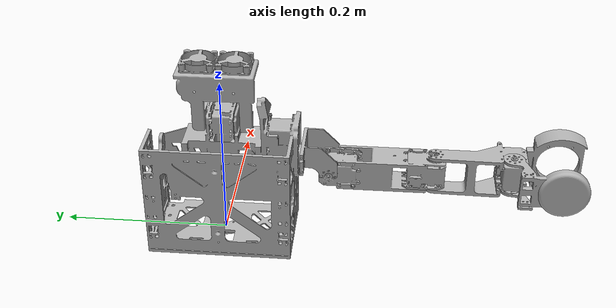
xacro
<?xml version="1.0" ?>
<robot name="loco_mani_srcirc_2025" xmlns:xacro="http://www.ros.org/wiki/xacro">

<xacro:include filename="$(find loco_mani_srcirc_2025_description)/urdf/materials.xacro" />
<xacro:include filename="$(find loco_mani_srcirc_2025_description)/urdf/loco_mani_srcirc_2025.trans" />
<xacro:include filename="$(find loco_mani_srcirc_2025_description)/urdf/loco_mani_srcirc_2025.gazebo" />
<link name="base_link">
  <inertial>
    <origin xyz="-0.0002956705420842343 -0.002471856627956735 0.0055274660903433335" rpy="0 0 0"/>
    <mass value="0.033833878314397124"/>
    <inertia ixx="7e-06" iyy="7e-06" izz="1.4e-05" ixy="-0.0" iyz="0.0" ixz="0.0"/>
  </inertial>
  <visual>
    <origin xyz="0 0 0" rpy="0 0 0"/>
    <geometry>
      <mesh filename="file://$(find loco_mani_srcirc_2025_description)/meshes/base_link.stl" scale="0.001 0.001 0.001"/>
    </geometry>
    <material name="silver"/>
  </visual>
  <collision>
    <origin xyz="0 0 0" rpy="0 0 0"/>
    <geometry>
      <mesh filename="file://$(find loco_mani_srcirc_2025_description)/meshes/base_link.stl" scale="0.001 0.001 0.001"/>
    </geometry>
  </collision>
</link>

<link name="main_body_1">
  <inertial>
    <origin xyz="-0.00858848471762031 -0.0181418112803982 0.09027124626615488" rpy="0 0 0"/>
    <mass value="2.6597689965634936"/>
    <inertia ixx="0.014599" iyy="0.009865" izz="0.010223" ixy="0.000305" iyz="0.001448" ixz="-0.000641"/>
  </inertial>
  <visual>
    <origin xyz="0.00044 0.002472 -0.008008" rpy="0 0 0"/>
    <geometry>
      <mesh filename="file://$(find loco_mani_srcirc_2025_description)/meshes/main_body_1.stl" scale="0.001 0.001 0.001"/>
    </geometry>
    <material name="silver"/>
  </visual>
  <collision>
    <origin xyz="0.00044 0.002472 -0.008008" rpy="0 0 0"/>
    <geometry>
      <mesh filename="file://$(find loco_mani_srcirc_2025_description)/meshes/main_body_1.stl" scale="0.001 0.001 0.001"/>
    </geometry>
  </collision>
</link>

<link name="head_1">
  <inertial>
    <origin xyz="-0.011246574134141537 -0.014850365615310444 0.03988833501792513" rpy="0 0 0"/>
    <mass value="0.7467191229429816"/>
    <inertia ixx="0.00078" iyy="0.000381" izz="0.000588" ixy="-1.2e-05" iyz="-3.3e-05" ixz="-5.6e-05"/>
  </inertial>
  <visual>
    <origin xyz="-0.017062 -0.018026 -0.153668" rpy="0 0 0"/>
    <geometry>
      <mesh filename="file://$(find loco_mani_srcirc_2025_description)/meshes/head_1.stl" scale="0.001 0.001 0.001"/>
    </geometry>
    <material name="silver"/>
  </visual>
  <collision>
    <origin xyz="-0.017062 -0.018026 -0.153668" rpy="0 0 0"/>
    <geometry>
      <mesh filename="file://$(find loco_mani_srcirc_2025_description)/meshes/head_1.stl" scale="0.001 0.001 0.001"/>
    </geometry>
  </collision>
</link>

<link name="shoulder_1">
  <inertial>
    <origin xyz="0.014454918998395672 -0.01052795343438917 -0.002083084549833386" rpy="0 0 0"/>
    <mass value="0.08387616634243387"/>
    <inertia ixx="2e-05" iyy="4.1e-05" izz="4.6e-05" ixy="3e-06" iyz="-4e-06" ixz="1e-06"/>
  </inertial>
  <visual>
    <origin xyz="0.000451 0.093722 -0.108168" rpy="0 0 0"/>
    <geometry>
      <mesh filename="file://$(find loco_mani_srcirc_2025_description)/meshes/shoulder_1.stl" scale="0.001 0.001 0.001"/>
    </geometry>
    <material name="silver"/>
  </visual>
  <collision>
    <origin xyz="0.000451 0.093722 -0.108168" rpy="0 0 0"/>
    <geometry>
      <mesh filename="file://$(find loco_mani_srcirc_2025_description)/meshes/shoulder_1.stl" scale="0.001 0.001 0.001"/>
    </geometry>
  </collision>
</link>

<link name="upperarm_1">
  <inertial>
    <origin xyz="-0.020519968266097678 -0.06272879729133657 0.00013781354674653745" rpy="0 0 0"/>
    <mass value="1.056487832985982"/>
    <inertia ixx="0.00222" iyy="0.00024" izz="0.002222" ixy="-1e-06" iyz="9e-06" ixz="-0.0"/>
  </inertial>
  <visual>
    <origin xyz="-0.038985 0.126226 -0.083168" rpy="0 0 0"/>
    <geometry>
      <mesh filename="file://$(find loco_mani_srcirc_2025_description)/meshes/upperarm_1.stl" scale="0.001 0.001 0.001"/>
    </geometry>
    <material name="silver"/>
  </visual>
  <collision>
    <origin xyz="-0.038985 0.126226 -0.083168" rpy="0 0 0"/>
    <geometry>
      <mesh filename="file://$(find loco_mani_srcirc_2025_description)/meshes/upperarm_1.stl" scale="0.001 0.001 0.001"/>
    </geometry>
  </collision>
</link>

<link name="forearm_1">
  <inertial>
    <origin xyz="0.015140618156164784 -0.09512082037101222 -0.02048476619985448" rpy="0 0 0"/>
    <mass value="0.840821162104394"/>
    <inertia ixx="0.001745" iyy="0.000548" izz="0.001608" ixy="0.000369" iyz="1e-06" ixz="1e-06"/>
  </inertial>
  <visual>
    <origin xyz="-0.018471 0.252424 -0.103718" rpy="0 0 0"/>
    <geometry>
      <mesh filename="file://$(find loco_mani_srcirc_2025_description)/meshes/forearm_1.stl" scale="0.001 0.001 0.001"/>
    </geometry>
    <material name="silver"/>
  </visual>
  <collision>
    <origin xyz="-0.018471 0.252424 -0.103718" rpy="0 0 0"/>
    <geometry>
      <mesh filename="file://$(find loco_mani_srcirc_2025_description)/meshes/forearm_1.stl" scale="0.001 0.001 0.001"/>
    </geometry>
  </collision>
</link>

<link name="gripper_1">
  <inertial>
    <origin xyz="-0.03043594519033718 -0.03862561903915579 -0.020511298558289162" rpy="0 0 0"/>
    <mass value="0.16829798127835183"/>
    <inertia ixx="0.000167" iyy="7.4e-05" izz="0.000138" ixy="-3e-05" iyz="-0.0" ixz="0.0"/>
  </inertial>
  <visual>
    <origin xyz="-0.01846 0.344624 -0.103718" rpy="0 0 0"/>
    <geometry>
      <mesh filename="file://$(find loco_mani_srcirc_2025_description)/meshes/gripper_1.stl" scale="0.001 0.001 0.001"/>
    </geometry>
    <material name="silver"/>
  </visual>
  <collision>
    <origin xyz="-0.01846 0.344624 -0.103718" rpy="0 0 0"/>
    <geometry>
      <mesh filename="file://$(find loco_mani_srcirc_2025_description)/meshes/gripper_1.stl" scale="0.001 0.001 0.001"/>
    </geometry>
  </collision>
</link>

<joint name="rotate_waist" type="continuous">
  <origin xyz="-0.00044 -0.002472 0.008008" rpy="0 0 0"/>
  <parent link="base_link"/>
  <child link="main_body_1"/>
  <axis xyz="0.0 0.0 1.0"/>
</joint>

<joint name="rotate_head" type="continuous">
  <origin xyz="0.017502 0.020498 0.14566" rpy="0 0 0"/>
  <parent link="main_body_1"/>
  <child link="head_1"/>
  <axis xyz="-0.000117 -1.0 0.0"/>
</joint>

<joint name="rotate_1" type="continuous">
  <origin xyz="-1.1e-05 -0.09125 0.10016" rpy="0 0 0"/>
  <parent link="main_body_1"/>
  <child link="shoulder_1"/>
  <axis xyz="-0.000117 -1.0 -0.0"/>
</joint>

<joint name="rotate_3" type="continuous">
  <origin xyz="0.039436 -0.032504 -0.025" rpy="0 0 0"/>
  <parent link="shoulder_1"/>
  <child link="upperarm_1"/>
  <axis xyz="-1.0 0.000117 -0.0"/>
</joint>

<joint name="rotate_5" type="continuous">
  <origin xyz="-0.020514 -0.126198 0.02055" rpy="0 0 0"/>
  <parent link="upperarm_1"/>
  <child link="forearm_1"/>
  <axis xyz="0.0 0.0 -1.0"/>
</joint>

<joint name="rotate_gripper" type="continuous">
  <origin xyz="-1.1e-05 -0.0922 0.0" rpy="0 0 0"/>
  <parent link="forearm_1"/>
  <child link="gripper_1"/>
  <axis xyz="0.0 0.0 -1.0"/>
</joint>

</robot>

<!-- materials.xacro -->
<robot name="loco_mani_srcirc_2025" xmlns:xacro="http://www.ros.org/wiki/xacro" >

<material name="silver">
  <color rgba="0.700 0.700 0.700 1.000"/>
</material>

</robot>

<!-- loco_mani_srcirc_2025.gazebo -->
<robot name="loco_mani_srcirc_2025" xmlns:xacro="http://www.ros.org/wiki/xacro" >

<xacro:property name="body_color" value="Gazebo/Silver" />

<gazebo>
  <plugin name="control" filename="libgazebo_ros_control.so"/>
</gazebo>
<gazebo reference="base_link">
  <material>${body_color}</material>
  <mu1>0.2</mu1>
  <mu2>0.2</mu2>
  <self_collide>true</self_collide>
  <gravity>true</gravity>
</gazebo>

<gazebo reference="main_body_1">
  <material>${body_color}</material>
  <mu1>0.2</mu1>
  <mu2>0.2</mu2>
  <self_collide>true</self_collide>
</gazebo>

<gazebo reference="head_1">
  <material>${body_color}</material>
  <mu1>0.2</mu1>
  <mu2>0.2</mu2>
  <self_collide>true</self_collide>
</gazebo>

<gazebo reference="shoulder_1">
  <material>${body_color}</material>
  <mu1>0.2</mu1>
  <mu2>0.2</mu2>
  <self_collide>true</self_collide>
</gazebo>

<gazebo reference="upperarm_1">
  <material>${body_color}</material>
  <mu1>0.2</mu1>
  <mu2>0.2</mu2>
  <self_collide>true</self_collide>
</gazebo>

<gazebo reference="forearm_1">
  <material>${body_color}</material>
  <mu1>0.2</mu1>
  <mu2>0.2</mu2>
  <self_collide>true</self_collide>
</gazebo>

<gazebo reference="gripper_1">
  <material>${body_color}</material>
  <mu1>0.2</mu1>
  <mu2>0.2</mu2>
  <self_collide>true</self_collide>
</gazebo>

</robot>
